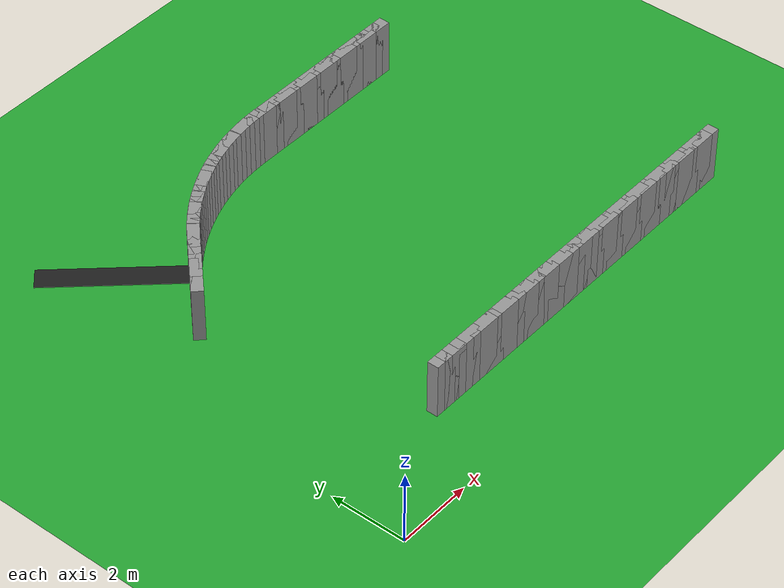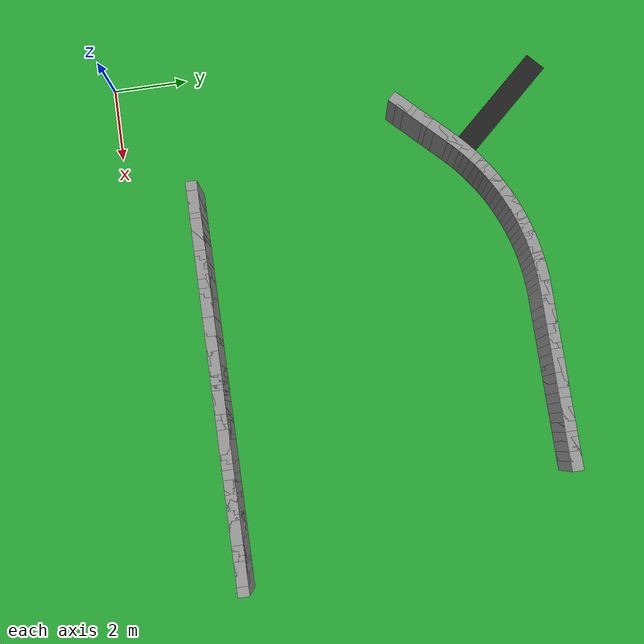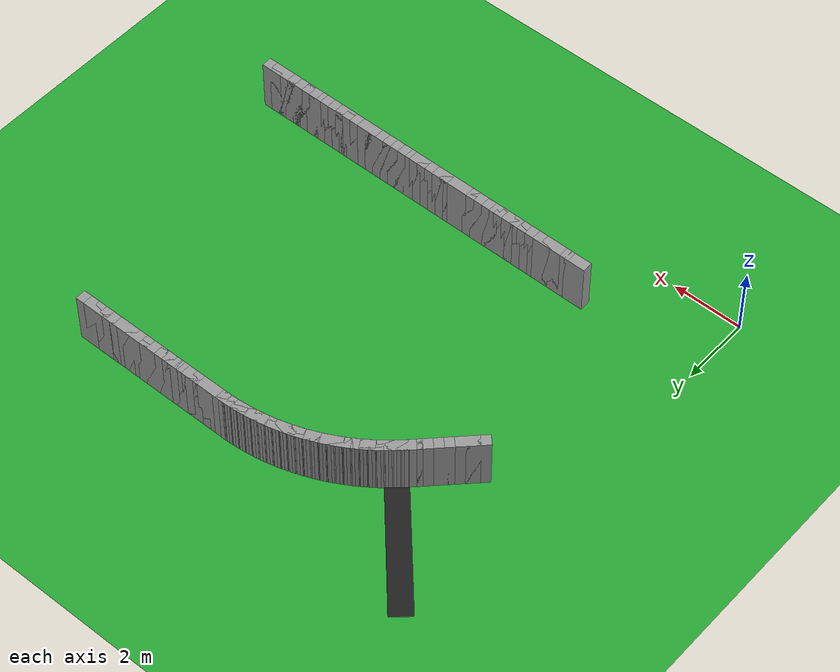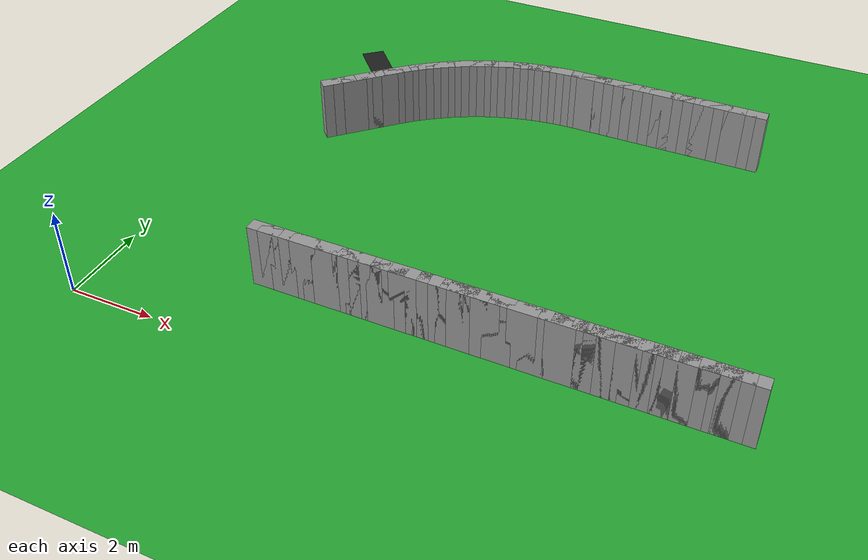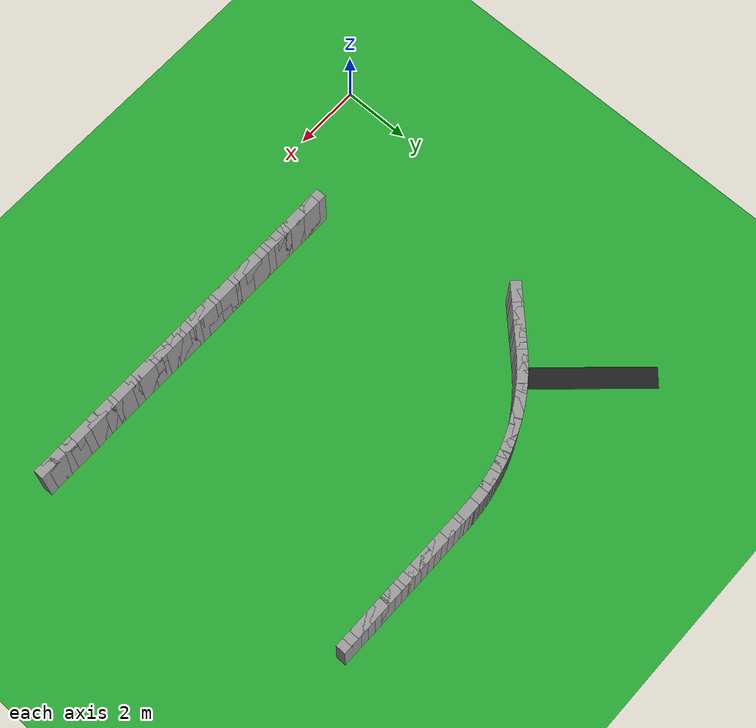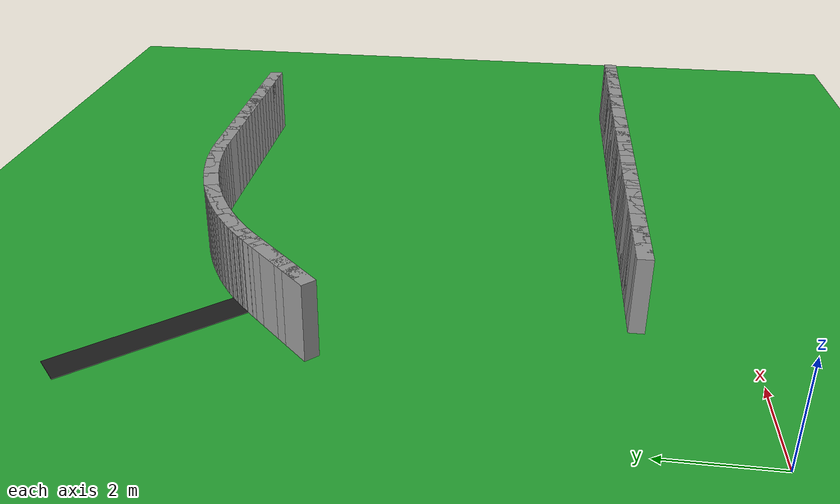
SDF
<sdf version="1.6">
 <world name="obstacle_tight">
  <include><uri>model://sun</uri></include>
  <model name="ground_plane">
   <static>true</static>
   <link name="link">
    <collision name="collision">
     <surface><friction><ode><mu>100</mu><mu2>50</mu2></ode></friction></surface>
     <geometry><plane><normal>0 0 1</normal><size>120 120</size></plane></geometry>
    </collision>
    <visual name="visual">
     <geometry><plane><normal>0 0 1</normal><size>120 120</size></plane></geometry>
     <material>
      <script><uri>file://media/materials/scripts/gazebo.material</uri><name>Gazebo/Green</name></script>
     </material>
    </visual>
   </link>
  </model>
  <model name="curbL_14">
   <static>true</static>
   <pose>3.625 1.950 0.750 0 0 0.00000</pose>
   <link name="link">
    <collision name="collision"><geometry><box><size>0.610 0.300 1.500</size></box></geometry></collision>
    <visual name="visual">
     <geometry><box><size>0.610 0.300 1.500</size></box></geometry>
     <material>
      <script><uri>file://media/materials/scripts/gazebo.material</uri><name>Gazebo/Grey</name></script>
     </material>
    </visual>
   </link>
  </model>
  <model name="curbL_15">
   <static>true</static>
   <pose>3.875 1.950 0.750 0 0 0.00000</pose>
   <link name="link">
    <collision name="collision"><geometry><box><size>0.610 0.300 1.500</size></box></geometry></collision>
    <visual name="visual">
     <geometry><box><size>0.610 0.300 1.500</size></box></geometry>
     <material>
      <script><uri>file://media/materials/scripts/gazebo.material</uri><name>Gazebo/Grey</name></script>
     </material>
    </visual>
   </link>
  </model>
  <model name="curbL_16">
   <static>true</static>
   <pose>4.125 1.950 0.750 0 0 0.00000</pose>
   <link name="link">
    <collision name="collision"><geometry><box><size>0.610 0.300 1.500</size></box></geometry></collision>
    <visual name="visual">
     <geometry><box><size>0.610 0.300 1.500</size></box></geometry>
     <material>
      <script><uri>file://media/materials/scripts/gazebo.material</uri><name>Gazebo/Grey</name></script>
     </material>
    </visual>
   </link>
  </model>
  <model name="curbL_17">
   <static>true</static>
   <pose>4.375 1.950 0.750 0 0 0.00000</pose>
   <link name="link">
    <collision name="collision"><geometry><box><size>0.610 0.300 1.500</size></box></geometry></collision>
    <visual name="visual">
     <geometry><box><size>0.610 0.300 1.500</size></box></geometry>
     <material>
      <script><uri>file://media/materials/scripts/gazebo.material</uri><name>Gazebo/Grey</name></script>
     </material>
    </visual>
   </link>
  </model>
  <model name="curbL_18">
   <static>true</static>
   <pose>4.625 1.950 0.750 0 0 0.00000</pose>
   <link name="link">
    <collision name="collision"><geometry><box><size>0.610 0.300 1.500</size></box></geometry></collision>
    <visual name="visual">
     <geometry><box><size>0.610 0.300 1.500</size></box></geometry>
     <material>
      <script><uri>file://media/materials/scripts/gazebo.material</uri><name>Gazebo/Grey</name></script>
     </material>
    </visual>
   </link>
  </model>
  <model name="curbL_19">
   <static>true</static>
   <pose>4.875 1.950 0.750 0 0 0.00000</pose>
   <link name="link">
    <collision name="collision"><geometry><box><size>0.610 0.300 1.500</size></box></geometry></collision>
    <visual name="visual">
     <geometry><box><size>0.610 0.300 1.500</size></box></geometry>
     <material>
      <script><uri>file://media/materials/scripts/gazebo.material</uri><name>Gazebo/Grey</name></script>
     </material>
    </visual>
   </link>
  </model>
  <model name="curbL_20">
   <static>true</static>
   <pose>5.125 1.950 0.750 0 0 0.00000</pose>
   <link name="link">
    <collision name="collision"><geometry><box><size>0.610 0.300 1.500</size></box></geometry></collision>
    <visual name="visual">
     <geometry><box><size>0.610 0.300 1.500</size></box></geometry>
     <material>
      <script><uri>file://media/materials/scripts/gazebo.material</uri><name>Gazebo/Grey</name></script>
     </material>
    </visual>
   </link>
  </model>
  <model name="curbL_21">
   <static>true</static>
   <pose>5.375 1.950 0.750 0 0 0.00000</pose>
   <link name="link">
    <collision name="collision"><geometry><box><size>0.610 0.300 1.500</size></box></geometry></collision>
    <visual name="visual">
     <geometry><box><size>0.610 0.300 1.500</size></box></geometry>
     <material>
      <script><uri>file://media/materials/scripts/gazebo.material</uri><name>Gazebo/Grey</name></script>
     </material>
    </visual>
   </link>
  </model>
  <model name="curbL_22">
   <static>true</static>
   <pose>5.625 1.950 0.750 0 0 0.00000</pose>
   <link name="link">
    <collision name="collision"><geometry><box><size>0.610 0.300 1.500</size></box></geometry></collision>
    <visual name="visual">
     <geometry><box><size>0.610 0.300 1.500</size></box></geometry>
     <material>
      <script><uri>file://media/materials/scripts/gazebo.material</uri><name>Gazebo/Grey</name></script>
     </material>
    </visual>
   </link>
  </model>
  <model name="curbL_23">
   <static>true</static>
   <pose>5.875 1.950 0.750 0 0 0.00000</pose>
   <link name="link">
    <collision name="collision"><geometry><box><size>0.610 0.300 1.500</size></box></geometry></collision>
    <visual name="visual">
     <geometry><box><size>0.610 0.300 1.500</size></box></geometry>
     <material>
      <script><uri>file://media/materials/scripts/gazebo.material</uri><name>Gazebo/Grey</name></script>
     </material>
    </visual>
   </link>
  </model>
  <model name="curbL_24">
   <static>true</static>
   <pose>6.125 1.950 0.750 0 0 0.00000</pose>
   <link name="link">
    <collision name="collision"><geometry><box><size>0.610 0.300 1.500</size></box></geometry></collision>
    <visual name="visual">
     <geometry><box><size>0.610 0.300 1.500</size></box></geometry>
     <material>
      <script><uri>file://media/materials/scripts/gazebo.material</uri><name>Gazebo/Grey</name></script>
     </material>
    </visual>
   </link>
  </model>
  <model name="curbL_25">
   <static>true</static>
   <pose>6.375 1.950 0.750 0 0 0.00000</pose>
   <link name="link">
    <collision name="collision"><geometry><box><size>0.610 0.300 1.500</size></box></geometry></collision>
    <visual name="visual">
     <geometry><box><size>0.610 0.300 1.500</size></box></geometry>
     <material>
      <script><uri>file://media/materials/scripts/gazebo.material</uri><name>Gazebo/Grey</name></script>
     </material>
    </visual>
   </link>
  </model>
  <model name="curbL_26">
   <static>true</static>
   <pose>6.625 1.950 0.750 0 0 0.00000</pose>
   <link name="link">
    <collision name="collision"><geometry><box><size>0.610 0.300 1.500</size></box></geometry></collision>
    <visual name="visual">
     <geometry><box><size>0.610 0.300 1.500</size></box></geometry>
     <material>
      <script><uri>file://media/materials/scripts/gazebo.material</uri><name>Gazebo/Grey</name></script>
     </material>
    </visual>
   </link>
  </model>
  <model name="curbL_27">
   <static>true</static>
   <pose>6.875 1.950 0.750 0 0 0.00000</pose>
   <link name="link">
    <collision name="collision"><geometry><box><size>0.610 0.300 1.500</size></box></geometry></collision>
    <visual name="visual">
     <geometry><box><size>0.610 0.300 1.500</size></box></geometry>
     <material>
      <script><uri>file://media/materials/scripts/gazebo.material</uri><name>Gazebo/Grey</name></script>
     </material>
    </visual>
   </link>
  </model>
  <model name="curbL_28">
   <static>true</static>
   <pose>7.125 1.950 0.750 0 0 0.00000</pose>
   <link name="link">
    <collision name="collision"><geometry><box><size>0.610 0.300 1.500</size></box></geometry></collision>
    <visual name="visual">
     <geometry><box><size>0.610 0.300 1.500</size></box></geometry>
     <material>
      <script><uri>file://media/materials/scripts/gazebo.material</uri><name>Gazebo/Grey</name></script>
     </material>
    </visual>
   </link>
  </model>
  <model name="curbL_29">
   <static>true</static>
   <pose>7.375 1.950 0.750 0 0 0.00000</pose>
   <link name="link">
    <collision name="collision"><geometry><box><size>0.610 0.300 1.500</size></box></geometry></collision>
    <visual name="visual">
     <geometry><box><size>0.610 0.300 1.500</size></box></geometry>
     <material>
      <script><uri>file://media/materials/scripts/gazebo.material</uri><name>Gazebo/Grey</name></script>
     </material>
    </visual>
   </link>
  </model>
  <model name="curbL_30">
   <static>true</static>
   <pose>7.625 1.950 0.750 0 0 0.00000</pose>
   <link name="link">
    <collision name="collision"><geometry><box><size>0.610 0.300 1.500</size></box></geometry></collision>
    <visual name="visual">
     <geometry><box><size>0.610 0.300 1.500</size></box></geometry>
     <material>
      <script><uri>file://media/materials/scripts/gazebo.material</uri><name>Gazebo/Grey</name></script>
     </material>
    </visual>
   </link>
  </model>
  <model name="curbL_31">
   <static>true</static>
   <pose>7.875 1.950 0.750 0 0 0.00000</pose>
   <link name="link">
    <collision name="collision"><geometry><box><size>0.610 0.300 1.500</size></box></geometry></collision>
    <visual name="visual">
     <geometry><box><size>0.610 0.300 1.500</size></box></geometry>
     <material>
      <script><uri>file://media/materials/scripts/gazebo.material</uri><name>Gazebo/Grey</name></script>
     </material>
    </visual>
   </link>
  </model>
  <model name="curbL_32">
   <static>true</static>
   <pose>8.125 1.950 0.750 0 0 0.00000</pose>
   <link name="link">
    <collision name="collision"><geometry><box><size>0.610 0.300 1.500</size></box></geometry></collision>
    <visual name="visual">
     <geometry><box><size>0.610 0.300 1.500</size></box></geometry>
     <material>
      <script><uri>file://media/materials/scripts/gazebo.material</uri><name>Gazebo/Grey</name></script>
     </material>
    </visual>
   </link>
  </model>
  <model name="curbL_33">
   <static>true</static>
   <pose>8.375 1.950 0.750 0 0 0.00000</pose>
   <link name="link">
    <collision name="collision"><geometry><box><size>0.610 0.300 1.500</size></box></geometry></collision>
    <visual name="visual">
     <geometry><box><size>0.610 0.300 1.500</size></box></geometry>
     <material>
      <script><uri>file://media/materials/scripts/gazebo.material</uri><name>Gazebo/Grey</name></script>
     </material>
    </visual>
   </link>
  </model>
  <model name="curbL_34">
   <static>true</static>
   <pose>8.625 1.950 0.750 0 0 0.00000</pose>
   <link name="link">
    <collision name="collision"><geometry><box><size>0.610 0.300 1.500</size></box></geometry></collision>
    <visual name="visual">
     <geometry><box><size>0.610 0.300 1.500</size></box></geometry>
     <material>
      <script><uri>file://media/materials/scripts/gazebo.material</uri><name>Gazebo/Grey</name></script>
     </material>
    </visual>
   </link>
  </model>
  <model name="curbL_35">
   <static>true</static>
   <pose>8.875 1.950 0.750 0 0 0.00000</pose>
   <link name="link">
    <collision name="collision"><geometry><box><size>0.610 0.300 1.500</size></box></geometry></collision>
    <visual name="visual">
     <geometry><box><size>0.610 0.300 1.500</size></box></geometry>
     <material>
      <script><uri>file://media/materials/scripts/gazebo.material</uri><name>Gazebo/Grey</name></script>
     </material>
    </visual>
   </link>
  </model>
  <model name="curbL_36">
   <static>true</static>
   <pose>9.125 1.950 0.750 0 0 0.00000</pose>
   <link name="link">
    <collision name="collision"><geometry><box><size>0.610 0.300 1.500</size></box></geometry></collision>
    <visual name="visual">
     <geometry><box><size>0.610 0.300 1.500</size></box></geometry>
     <material>
      <script><uri>file://media/materials/scripts/gazebo.material</uri><name>Gazebo/Grey</name></script>
     </material>
    </visual>
   </link>
  </model>
  <model name="curbL_37">
   <static>true</static>
   <pose>9.375 1.950 0.750 0 0 0.00000</pose>
   <link name="link">
    <collision name="collision"><geometry><box><size>0.610 0.300 1.500</size></box></geometry></collision>
    <visual name="visual">
     <geometry><box><size>0.610 0.300 1.500</size></box></geometry>
     <material>
      <script><uri>file://media/materials/scripts/gazebo.material</uri><name>Gazebo/Grey</name></script>
     </material>
    </visual>
   </link>
  </model>
  <model name="curbL_38">
   <static>true</static>
   <pose>9.625 1.950 0.750 0 0 0.00000</pose>
   <link name="link">
    <collision name="collision"><geometry><box><size>0.610 0.300 1.500</size></box></geometry></collision>
    <visual name="visual">
     <geometry><box><size>0.610 0.300 1.500</size></box></geometry>
     <material>
      <script><uri>file://media/materials/scripts/gazebo.material</uri><name>Gazebo/Grey</name></script>
     </material>
    </visual>
   </link>
  </model>
  <model name="curbL_39">
   <static>true</static>
   <pose>9.875 1.950 0.750 0 0 0.00000</pose>
   <link name="link">
    <collision name="collision"><geometry><box><size>0.610 0.300 1.500</size></box></geometry></collision>
    <visual name="visual">
     <geometry><box><size>0.610 0.300 1.500</size></box></geometry>
     <material>
      <script><uri>file://media/materials/scripts/gazebo.material</uri><name>Gazebo/Grey</name></script>
     </material>
    </visual>
   </link>
  </model>
  <model name="curbL_40">
   <static>true</static>
   <pose>10.125 1.950 0.750 0 0 0.00000</pose>
   <link name="link">
    <collision name="collision"><geometry><box><size>0.610 0.300 1.500</size></box></geometry></collision>
    <visual name="visual">
     <geometry><box><size>0.610 0.300 1.500</size></box></geometry>
     <material>
      <script><uri>file://media/materials/scripts/gazebo.material</uri><name>Gazebo/Grey</name></script>
     </material>
    </visual>
   </link>
  </model>
  <model name="curbL_41">
   <static>true</static>
   <pose>10.375 1.950 0.750 0 0 0.00000</pose>
   <link name="link">
    <collision name="collision"><geometry><box><size>0.610 0.300 1.500</size></box></geometry></collision>
    <visual name="visual">
     <geometry><box><size>0.610 0.300 1.500</size></box></geometry>
     <material>
      <script><uri>file://media/materials/scripts/gazebo.material</uri><name>Gazebo/Grey</name></script>
     </material>
    </visual>
   </link>
  </model>
  <model name="curbL_42">
   <static>true</static>
   <pose>10.625 1.950 0.750 0 0 0.00000</pose>
   <link name="link">
    <collision name="collision"><geometry><box><size>0.610 0.300 1.500</size></box></geometry></collision>
    <visual name="visual">
     <geometry><box><size>0.610 0.300 1.500</size></box></geometry>
     <material>
      <script><uri>file://media/materials/scripts/gazebo.material</uri><name>Gazebo/Grey</name></script>
     </material>
    </visual>
   </link>
  </model>
  <model name="curbL_43">
   <static>true</static>
   <pose>10.875 1.950 0.750 0 0 0.00000</pose>
   <link name="link">
    <collision name="collision"><geometry><box><size>0.610 0.300 1.500</size></box></geometry></collision>
    <visual name="visual">
     <geometry><box><size>0.610 0.300 1.500</size></box></geometry>
     <material>
      <script><uri>file://media/materials/scripts/gazebo.material</uri><name>Gazebo/Grey</name></script>
     </material>
    </visual>
   </link>
  </model>
  <model name="curbL_44">
   <static>true</static>
   <pose>11.125 1.950 0.750 0 0 0.00000</pose>
   <link name="link">
    <collision name="collision"><geometry><box><size>0.610 0.300 1.500</size></box></geometry></collision>
    <visual name="visual">
     <geometry><box><size>0.610 0.300 1.500</size></box></geometry>
     <material>
      <script><uri>file://media/materials/scripts/gazebo.material</uri><name>Gazebo/Grey</name></script>
     </material>
    </visual>
   </link>
  </model>
  <model name="curbL_45">
   <static>true</static>
   <pose>11.375 1.950 0.750 0 0 0.00000</pose>
   <link name="link">
    <collision name="collision"><geometry><box><size>0.610 0.300 1.500</size></box></geometry></collision>
    <visual name="visual">
     <geometry><box><size>0.610 0.300 1.500</size></box></geometry>
     <material>
      <script><uri>file://media/materials/scripts/gazebo.material</uri><name>Gazebo/Grey</name></script>
     </material>
    </visual>
   </link>
  </model>
  <model name="curbL_46">
   <static>true</static>
   <pose>11.625 1.950 0.750 0 0 0.00000</pose>
   <link name="link">
    <collision name="collision"><geometry><box><size>0.610 0.300 1.500</size></box></geometry></collision>
    <visual name="visual">
     <geometry><box><size>0.610 0.300 1.500</size></box></geometry>
     <material>
      <script><uri>file://media/materials/scripts/gazebo.material</uri><name>Gazebo/Grey</name></script>
     </material>
    </visual>
   </link>
  </model>
  <model name="curbL_47">
   <static>true</static>
   <pose>11.875 1.950 0.750 0 0 0.00000</pose>
   <link name="link">
    <collision name="collision"><geometry><box><size>0.610 0.300 1.500</size></box></geometry></collision>
    <visual name="visual">
     <geometry><box><size>0.610 0.300 1.500</size></box></geometry>
     <material>
      <script><uri>file://media/materials/scripts/gazebo.material</uri><name>Gazebo/Grey</name></script>
     </material>
    </visual>
   </link>
  </model>
  <model name="curbL_48">
   <static>true</static>
   <pose>12.125 1.950 0.750 0 0 0.00000</pose>
   <link name="link">
    <collision name="collision"><geometry><box><size>0.610 0.300 1.500</size></box></geometry></collision>
    <visual name="visual">
     <geometry><box><size>0.610 0.300 1.500</size></box></geometry>
     <material>
      <script><uri>file://media/materials/scripts/gazebo.material</uri><name>Gazebo/Grey</name></script>
     </material>
    </visual>
   </link>
  </model>
  <model name="curbL_49">
   <static>true</static>
   <pose>12.375 1.950 0.750 0 0 0.00000</pose>
   <link name="link">
    <collision name="collision"><geometry><box><size>0.610 0.300 1.500</size></box></geometry></collision>
    <visual name="visual">
     <geometry><box><size>0.610 0.300 1.500</size></box></geometry>
     <material>
      <script><uri>file://media/materials/scripts/gazebo.material</uri><name>Gazebo/Grey</name></script>
     </material>
    </visual>
   </link>
  </model>
  <model name="curbL_50">
   <static>true</static>
   <pose>12.625 1.950 0.750 0 0 0.00000</pose>
   <link name="link">
    <collision name="collision"><geometry><box><size>0.610 0.300 1.500</size></box></geometry></collision>
    <visual name="visual">
     <geometry><box><size>0.610 0.300 1.500</size></box></geometry>
     <material>
      <script><uri>file://media/materials/scripts/gazebo.material</uri><name>Gazebo/Grey</name></script>
     </material>
    </visual>
   </link>
  </model>
  <model name="curbL_51">
   <static>true</static>
   <pose>12.875 1.950 0.750 0 0 0.00000</pose>
   <link name="link">
    <collision name="collision"><geometry><box><size>0.610 0.300 1.500</size></box></geometry></collision>
    <visual name="visual">
     <geometry><box><size>0.610 0.300 1.500</size></box></geometry>
     <material>
      <script><uri>file://media/materials/scripts/gazebo.material</uri><name>Gazebo/Grey</name></script>
     </material>
    </visual>
   </link>
  </model>
  <model name="curbL_52">
   <static>true</static>
   <pose>13.125 1.950 0.750 0 0 0.00000</pose>
   <link name="link">
    <collision name="collision"><geometry><box><size>0.610 0.300 1.500</size></box></geometry></collision>
    <visual name="visual">
     <geometry><box><size>0.610 0.300 1.500</size></box></geometry>
     <material>
      <script><uri>file://media/materials/scripts/gazebo.material</uri><name>Gazebo/Grey</name></script>
     </material>
    </visual>
   </link>
  </model>
  <model name="curbL_53">
   <static>true</static>
   <pose>13.375 1.950 0.750 0 0 0.00000</pose>
   <link name="link">
    <collision name="collision"><geometry><box><size>0.610 0.300 1.500</size></box></geometry></collision>
    <visual name="visual">
     <geometry><box><size>0.610 0.300 1.500</size></box></geometry>
     <material>
      <script><uri>file://media/materials/scripts/gazebo.material</uri><name>Gazebo/Grey</name></script>
     </material>
    </visual>
   </link>
  </model>
  <model name="curbL_54">
   <static>true</static>
   <pose>13.625 1.950 0.750 0 0 0.00000</pose>
   <link name="link">
    <collision name="collision"><geometry><box><size>0.610 0.300 1.500</size></box></geometry></collision>
    <visual name="visual">
     <geometry><box><size>0.610 0.300 1.500</size></box></geometry>
     <material>
      <script><uri>file://media/materials/scripts/gazebo.material</uri><name>Gazebo/Grey</name></script>
     </material>
    </visual>
   </link>
  </model>
  <model name="curbL_224">
   <static>true</static>
   <pose>11.799 10.612 0.750 0 0 3.14159</pose>
   <link name="link">
    <collision name="collision"><geometry><box><size>0.610 0.300 1.500</size></box></geometry></collision>
    <visual name="visual">
     <geometry><box><size>0.610 0.300 1.500</size></box></geometry>
     <material>
      <script><uri>file://media/materials/scripts/gazebo.material</uri><name>Gazebo/Grey</name></script>
     </material>
    </visual>
   </link>
  </model>
  <model name="curbL_225">
   <static>true</static>
   <pose>11.549 10.612 0.750 0 0 3.14159</pose>
   <link name="link">
    <collision name="collision"><geometry><box><size>0.610 0.300 1.500</size></box></geometry></collision>
    <visual name="visual">
     <geometry><box><size>0.610 0.300 1.500</size></box></geometry>
     <material>
      <script><uri>file://media/materials/scripts/gazebo.material</uri><name>Gazebo/Grey</name></script>
     </material>
    </visual>
   </link>
  </model>
  <model name="curbL_226">
   <static>true</static>
   <pose>11.299 10.612 0.750 0 0 3.14159</pose>
   <link name="link">
    <collision name="collision"><geometry><box><size>0.610 0.300 1.500</size></box></geometry></collision>
    <visual name="visual">
     <geometry><box><size>0.610 0.300 1.500</size></box></geometry>
     <material>
      <script><uri>file://media/materials/scripts/gazebo.material</uri><name>Gazebo/Grey</name></script>
     </material>
    </visual>
   </link>
  </model>
  <model name="curbL_227">
   <static>true</static>
   <pose>11.049 10.612 0.750 0 0 3.14159</pose>
   <link name="link">
    <collision name="collision"><geometry><box><size>0.610 0.300 1.500</size></box></geometry></collision>
    <visual name="visual">
     <geometry><box><size>0.610 0.300 1.500</size></box></geometry>
     <material>
      <script><uri>file://media/materials/scripts/gazebo.material</uri><name>Gazebo/Grey</name></script>
     </material>
    </visual>
   </link>
  </model>
  <model name="curbL_228">
   <static>true</static>
   <pose>10.799 10.612 0.750 0 0 3.14159</pose>
   <link name="link">
    <collision name="collision"><geometry><box><size>0.610 0.300 1.500</size></box></geometry></collision>
    <visual name="visual">
     <geometry><box><size>0.610 0.300 1.500</size></box></geometry>
     <material>
      <script><uri>file://media/materials/scripts/gazebo.material</uri><name>Gazebo/Grey</name></script>
     </material>
    </visual>
   </link>
  </model>
  <model name="curbL_229">
   <static>true</static>
   <pose>10.549 10.612 0.750 0 0 3.14159</pose>
   <link name="link">
    <collision name="collision"><geometry><box><size>0.610 0.300 1.500</size></box></geometry></collision>
    <visual name="visual">
     <geometry><box><size>0.610 0.300 1.500</size></box></geometry>
     <material>
      <script><uri>file://media/materials/scripts/gazebo.material</uri><name>Gazebo/Grey</name></script>
     </material>
    </visual>
   </link>
  </model>
  <model name="curbL_230">
   <static>true</static>
   <pose>10.299 10.612 0.750 0 0 3.14159</pose>
   <link name="link">
    <collision name="collision"><geometry><box><size>0.610 0.300 1.500</size></box></geometry></collision>
    <visual name="visual">
     <geometry><box><size>0.610 0.300 1.500</size></box></geometry>
     <material>
      <script><uri>file://media/materials/scripts/gazebo.material</uri><name>Gazebo/Grey</name></script>
     </material>
    </visual>
   </link>
  </model>
  <model name="curbL_231">
   <static>true</static>
   <pose>10.049 10.612 0.750 0 0 3.14159</pose>
   <link name="link">
    <collision name="collision"><geometry><box><size>0.610 0.300 1.500</size></box></geometry></collision>
    <visual name="visual">
     <geometry><box><size>0.610 0.300 1.500</size></box></geometry>
     <material>
      <script><uri>file://media/materials/scripts/gazebo.material</uri><name>Gazebo/Grey</name></script>
     </material>
    </visual>
   </link>
  </model>
  <model name="curbL_232">
   <static>true</static>
   <pose>9.799 10.612 0.750 0 0 3.14159</pose>
   <link name="link">
    <collision name="collision"><geometry><box><size>0.610 0.300 1.500</size></box></geometry></collision>
    <visual name="visual">
     <geometry><box><size>0.610 0.300 1.500</size></box></geometry>
     <material>
      <script><uri>file://media/materials/scripts/gazebo.material</uri><name>Gazebo/Grey</name></script>
     </material>
    </visual>
   </link>
  </model>
  <model name="curbL_233">
   <static>true</static>
   <pose>9.549 10.612 0.750 0 0 3.14159</pose>
   <link name="link">
    <collision name="collision"><geometry><box><size>0.610 0.300 1.500</size></box></geometry></collision>
    <visual name="visual">
     <geometry><box><size>0.610 0.300 1.500</size></box></geometry>
     <material>
      <script><uri>file://media/materials/scripts/gazebo.material</uri><name>Gazebo/Grey</name></script>
     </material>
    </visual>
   </link>
  </model>
  <model name="curbL_234">
   <static>true</static>
   <pose>9.299 10.612 0.750 0 0 3.14159</pose>
   <link name="link">
    <collision name="collision"><geometry><box><size>0.610 0.300 1.500</size></box></geometry></collision>
    <visual name="visual">
     <geometry><box><size>0.610 0.300 1.500</size></box></geometry>
     <material>
      <script><uri>file://media/materials/scripts/gazebo.material</uri><name>Gazebo/Grey</name></script>
     </material>
    </visual>
   </link>
  </model>
  <model name="curbL_235">
   <static>true</static>
   <pose>9.049 10.612 0.750 0 0 3.14159</pose>
   <link name="link">
    <collision name="collision"><geometry><box><size>0.610 0.300 1.500</size></box></geometry></collision>
    <visual name="visual">
     <geometry><box><size>0.610 0.300 1.500</size></box></geometry>
     <material>
      <script><uri>file://media/materials/scripts/gazebo.material</uri><name>Gazebo/Grey</name></script>
     </material>
    </visual>
   </link>
  </model>
  <model name="curbL_236">
   <static>true</static>
   <pose>8.799 10.612 0.750 0 0 3.14159</pose>
   <link name="link">
    <collision name="collision"><geometry><box><size>0.610 0.300 1.500</size></box></geometry></collision>
    <visual name="visual">
     <geometry><box><size>0.610 0.300 1.500</size></box></geometry>
     <material>
      <script><uri>file://media/materials/scripts/gazebo.material</uri><name>Gazebo/Grey</name></script>
     </material>
    </visual>
   </link>
  </model>
  <model name="curbL_237">
   <static>true</static>
   <pose>8.549 10.612 0.750 0 0 3.14159</pose>
   <link name="link">
    <collision name="collision"><geometry><box><size>0.610 0.300 1.500</size></box></geometry></collision>
    <visual name="visual">
     <geometry><box><size>0.610 0.300 1.500</size></box></geometry>
     <material>
      <script><uri>file://media/materials/scripts/gazebo.material</uri><name>Gazebo/Grey</name></script>
     </material>
    </visual>
   </link>
  </model>
  <model name="curbL_238">
   <static>true</static>
   <pose>8.299 10.612 0.750 0 0 3.14159</pose>
   <link name="link">
    <collision name="collision"><geometry><box><size>0.610 0.300 1.500</size></box></geometry></collision>
    <visual name="visual">
     <geometry><box><size>0.610 0.300 1.500</size></box></geometry>
     <material>
      <script><uri>file://media/materials/scripts/gazebo.material</uri><name>Gazebo/Grey</name></script>
     </material>
    </visual>
   </link>
  </model>
  <model name="curbL_239">
   <static>true</static>
   <pose>8.049 10.612 0.750 0 0 3.14159</pose>
   <link name="link">
    <collision name="collision"><geometry><box><size>0.610 0.300 1.500</size></box></geometry></collision>
    <visual name="visual">
     <geometry><box><size>0.610 0.300 1.500</size></box></geometry>
     <material>
      <script><uri>file://media/materials/scripts/gazebo.material</uri><name>Gazebo/Grey</name></script>
     </material>
    </visual>
   </link>
  </model>
  <model name="curbL_240">
   <static>true</static>
   <pose>7.799 10.612 0.750 0 0 3.14159</pose>
   <link name="link">
    <collision name="collision"><geometry><box><size>0.610 0.300 1.500</size></box></geometry></collision>
    <visual name="visual">
     <geometry><box><size>0.610 0.300 1.500</size></box></geometry>
     <material>
      <script><uri>file://media/materials/scripts/gazebo.material</uri><name>Gazebo/Grey</name></script>
     </material>
    </visual>
   </link>
  </model>
  <model name="curbL_241">
   <static>true</static>
   <pose>7.549 10.612 0.750 0 0 3.14159</pose>
   <link name="link">
    <collision name="collision"><geometry><box><size>0.610 0.300 1.500</size></box></geometry></collision>
    <visual name="visual">
     <geometry><box><size>0.610 0.300 1.500</size></box></geometry>
     <material>
      <script><uri>file://media/materials/scripts/gazebo.material</uri><name>Gazebo/Grey</name></script>
     </material>
    </visual>
   </link>
  </model>
  <model name="curbL_242">
   <static>true</static>
   <pose>7.329 10.611 0.750 0 0 -3.12588</pose>
   <link name="link">
    <collision name="collision"><geometry><box><size>0.550 0.300 1.500</size></box></geometry></collision>
    <visual name="visual">
     <geometry><box><size>0.550 0.300 1.500</size></box></geometry>
     <material>
      <script><uri>file://media/materials/scripts/gazebo.material</uri><name>Gazebo/Grey</name></script>
     </material>
    </visual>
   </link>
  </model>
  <model name="curbL_243">
   <static>true</static>
   <pose>7.139 10.605 0.750 0 0 -3.09447</pose>
   <link name="link">
    <collision name="collision"><geometry><box><size>0.550 0.300 1.500</size></box></geometry></collision>
    <visual name="visual">
     <geometry><box><size>0.550 0.300 1.500</size></box></geometry>
     <material>
      <script><uri>file://media/materials/scripts/gazebo.material</uri><name>Gazebo/Grey</name></script>
     </material>
    </visual>
   </link>
  </model>
  <model name="curbL_244">
   <static>true</static>
   <pose>6.950 10.593 0.750 0 0 -3.06305</pose>
   <link name="link">
    <collision name="collision"><geometry><box><size>0.550 0.300 1.500</size></box></geometry></collision>
    <visual name="visual">
     <geometry><box><size>0.550 0.300 1.500</size></box></geometry>
     <material>
      <script><uri>file://media/materials/scripts/gazebo.material</uri><name>Gazebo/Grey</name></script>
     </material>
    </visual>
   </link>
  </model>
  <model name="curbL_245">
   <static>true</static>
   <pose>6.760 10.575 0.750 0 0 -3.03164</pose>
   <link name="link">
    <collision name="collision"><geometry><box><size>0.550 0.300 1.500</size></box></geometry></collision>
    <visual name="visual">
     <geometry><box><size>0.550 0.300 1.500</size></box></geometry>
     <material>
      <script><uri>file://media/materials/scripts/gazebo.material</uri><name>Gazebo/Grey</name></script>
     </material>
    </visual>
   </link>
  </model>
  <model name="curbL_246">
   <static>true</static>
   <pose>6.572 10.551 0.750 0 0 -3.00022</pose>
   <link name="link">
    <collision name="collision"><geometry><box><size>0.550 0.300 1.500</size></box></geometry></collision>
    <visual name="visual">
     <geometry><box><size>0.550 0.300 1.500</size></box></geometry>
     <material>
      <script><uri>file://media/materials/scripts/gazebo.material</uri><name>Gazebo/Grey</name></script>
     </material>
    </visual>
   </link>
  </model>
  <model name="curbL_247">
   <static>true</static>
   <pose>6.384 10.521 0.750 0 0 -2.96881</pose>
   <link name="link">
    <collision name="collision"><geometry><box><size>0.550 0.300 1.500</size></box></geometry></collision>
    <visual name="visual">
     <geometry><box><size>0.550 0.300 1.500</size></box></geometry>
     <material>
      <script><uri>file://media/materials/scripts/gazebo.material</uri><name>Gazebo/Grey</name></script>
     </material>
    </visual>
   </link>
  </model>
  <model name="curbL_248">
   <static>true</static>
   <pose>6.198 10.486 0.750 0 0 -2.93739</pose>
   <link name="link">
    <collision name="collision"><geometry><box><size>0.550 0.300 1.500</size></box></geometry></collision>
    <visual name="visual">
     <geometry><box><size>0.550 0.300 1.500</size></box></geometry>
     <material>
      <script><uri>file://media/materials/scripts/gazebo.material</uri><name>Gazebo/Grey</name></script>
     </material>
    </visual>
   </link>
  </model>
  <model name="curbL_249">
   <static>true</static>
   <pose>6.012 10.444 0.750 0 0 -2.90597</pose>
   <link name="link">
    <collision name="collision"><geometry><box><size>0.550 0.300 1.500</size></box></geometry></collision>
    <visual name="visual">
     <geometry><box><size>0.550 0.300 1.500</size></box></geometry>
     <material>
      <script><uri>file://media/materials/scripts/gazebo.material</uri><name>Gazebo/Grey</name></script>
     </material>
    </visual>
   </link>
  </model>
  <model name="curbL_250">
   <static>true</static>
   <pose>5.828 10.397 0.750 0 0 -2.87456</pose>
   <link name="link">
    <collision name="collision"><geometry><box><size>0.550 0.300 1.500</size></box></geometry></collision>
    <visual name="visual">
     <geometry><box><size>0.550 0.300 1.500</size></box></geometry>
     <material>
      <script><uri>file://media/materials/scripts/gazebo.material</uri><name>Gazebo/Grey</name></script>
     </material>
    </visual>
   </link>
  </model>
  <model name="curbL_251">
   <static>true</static>
   <pose>5.646 10.344 0.750 0 0 -2.84314</pose>
   <link name="link">
    <collision name="collision"><geometry><box><size>0.550 0.300 1.500</size></box></geometry></collision>
    <visual name="visual">
     <geometry><box><size>0.550 0.300 1.500</size></box></geometry>
     <material>
      <script><uri>file://media/materials/scripts/gazebo.material</uri><name>Gazebo/Grey</name></script>
     </material>
    </visual>
   </link>
  </model>
  <model name="curbL_252">
   <static>true</static>
   <pose>5.465 10.285 0.750 0 0 -2.81173</pose>
   <link name="link">
    <collision name="collision"><geometry><box><size>0.550 0.300 1.500</size></box></geometry></collision>
    <visual name="visual">
     <geometry><box><size>0.550 0.300 1.500</size></box></geometry>
     <material>
      <script><uri>file://media/materials/scripts/gazebo.material</uri><name>Gazebo/Grey</name></script>
     </material>
    </visual>
   </link>
  </model>
  <model name="curbL_253">
   <static>true</static>
   <pose>5.286 10.221 0.750 0 0 -2.78031</pose>
   <link name="link">
    <collision name="collision"><geometry><box><size>0.550 0.300 1.500</size></box></geometry></collision>
    <visual name="visual">
     <geometry><box><size>0.550 0.300 1.500</size></box></geometry>
     <material>
      <script><uri>file://media/materials/scripts/gazebo.material</uri><name>Gazebo/Grey</name></script>
     </material>
    </visual>
   </link>
  </model>
  <model name="curbL_254">
   <static>true</static>
   <pose>5.109 10.151 0.750 0 0 -2.74889</pose>
   <link name="link">
    <collision name="collision"><geometry><box><size>0.550 0.300 1.500</size></box></geometry></collision>
    <visual name="visual">
     <geometry><box><size>0.550 0.300 1.500</size></box></geometry>
     <material>
      <script><uri>file://media/materials/scripts/gazebo.material</uri><name>Gazebo/Grey</name></script>
     </material>
    </visual>
   </link>
  </model>
  <model name="curbL_255">
   <static>true</static>
   <pose>4.935 10.075 0.750 0 0 -2.71748</pose>
   <link name="link">
    <collision name="collision"><geometry><box><size>0.550 0.300 1.500</size></box></geometry></collision>
    <visual name="visual">
     <geometry><box><size>0.550 0.300 1.500</size></box></geometry>
     <material>
      <script><uri>file://media/materials/scripts/gazebo.material</uri><name>Gazebo/Grey</name></script>
     </material>
    </visual>
   </link>
  </model>
  <model name="curbL_256">
   <static>true</static>
   <pose>4.763 9.994 0.750 0 0 -2.68606</pose>
   <link name="link">
    <collision name="collision"><geometry><box><size>0.550 0.300 1.500</size></box></geometry></collision>
    <visual name="visual">
     <geometry><box><size>0.550 0.300 1.500</size></box></geometry>
     <material>
      <script><uri>file://media/materials/scripts/gazebo.material</uri><name>Gazebo/Grey</name></script>
     </material>
    </visual>
   </link>
  </model>
  <model name="curbL_257">
   <static>true</static>
   <pose>4.594 9.908 0.750 0 0 -2.65465</pose>
   <link name="link">
    <collision name="collision"><geometry><box><size>0.550 0.300 1.500</size></box></geometry></collision>
    <visual name="visual">
     <geometry><box><size>0.550 0.300 1.500</size></box></geometry>
     <material>
      <script><uri>file://media/materials/scripts/gazebo.material</uri><name>Gazebo/Grey</name></script>
     </material>
    </visual>
   </link>
  </model>
  <model name="curbL_258">
   <static>true</static>
   <pose>4.427 9.817 0.750 0 0 -2.62323</pose>
   <link name="link">
    <collision name="collision"><geometry><box><size>0.550 0.300 1.500</size></box></geometry></collision>
    <visual name="visual">
     <geometry><box><size>0.550 0.300 1.500</size></box></geometry>
     <material>
      <script><uri>file://media/materials/scripts/gazebo.material</uri><name>Gazebo/Grey</name></script>
     </material>
    </visual>
   </link>
  </model>
  <model name="curbL_259">
   <static>true</static>
   <pose>4.263 9.720 0.750 0 0 -2.59181</pose>
   <link name="link">
    <collision name="collision"><geometry><box><size>0.550 0.300 1.500</size></box></geometry></collision>
    <visual name="visual">
     <geometry><box><size>0.550 0.300 1.500</size></box></geometry>
     <material>
      <script><uri>file://media/materials/scripts/gazebo.material</uri><name>Gazebo/Grey</name></script>
     </material>
    </visual>
   </link>
  </model>
  <model name="curbL_260">
   <static>true</static>
   <pose>4.103 9.618 0.750 0 0 -2.56040</pose>
   <link name="link">
    <collision name="collision"><geometry><box><size>0.550 0.300 1.500</size></box></geometry></collision>
    <visual name="visual">
     <geometry><box><size>0.550 0.300 1.500</size></box></geometry>
     <material>
      <script><uri>file://media/materials/scripts/gazebo.material</uri><name>Gazebo/Grey</name></script>
     </material>
    </visual>
   </link>
  </model>
  <model name="curbL_261">
   <static>true</static>
   <pose>3.946 9.511 0.750 0 0 -2.52898</pose>
   <link name="link">
    <collision name="collision"><geometry><box><size>0.550 0.300 1.500</size></box></geometry></collision>
    <visual name="visual">
     <geometry><box><size>0.550 0.300 1.500</size></box></geometry>
     <material>
      <script><uri>file://media/materials/scripts/gazebo.material</uri><name>Gazebo/Grey</name></script>
     </material>
    </visual>
   </link>
  </model>
  <model name="curbL_262">
   <static>true</static>
   <pose>3.792 9.399 0.750 0 0 -2.49757</pose>
   <link name="link">
    <collision name="collision"><geometry><box><size>0.550 0.300 1.500</size></box></geometry></collision>
    <visual name="visual">
     <geometry><box><size>0.550 0.300 1.500</size></box></geometry>
     <material>
      <script><uri>file://media/materials/scripts/gazebo.material</uri><name>Gazebo/Grey</name></script>
     </material>
    </visual>
   </link>
  </model>
  <model name="curbL_263">
   <static>true</static>
   <pose>3.642 9.283 0.750 0 0 -2.46615</pose>
   <link name="link">
    <collision name="collision"><geometry><box><size>0.550 0.300 1.500</size></box></geometry></collision>
    <visual name="visual">
     <geometry><box><size>0.550 0.300 1.500</size></box></geometry>
     <material>
      <script><uri>file://media/materials/scripts/gazebo.material</uri><name>Gazebo/Grey</name></script>
     </material>
    </visual>
   </link>
  </model>
  <model name="curbL_264">
   <static>true</static>
   <pose>3.495 9.162 0.750 0 0 -2.43473</pose>
   <link name="link">
    <collision name="collision"><geometry><box><size>0.550 0.300 1.500</size></box></geometry></collision>
    <visual name="visual">
     <geometry><box><size>0.550 0.300 1.500</size></box></geometry>
     <material>
      <script><uri>file://media/materials/scripts/gazebo.material</uri><name>Gazebo/Grey</name></script>
     </material>
    </visual>
   </link>
  </model>
  <model name="asphalt_265">
   <static>true</static>
   <pose>2.041 10.478 0.005 0 0 -2.40332</pose>
   <link name="link">
    <visual name="visual">
     <geometry><box><size>0.611 3.600 0.010</size></box></geometry>
     <material>
      <script><uri>file://media/materials/scripts/gazebo.material</uri><name>Gazebo/Black</name></script>
     </material>
    </visual>
   </link>
  </model>
  <model name="curbL_265">
   <static>true</static>
   <pose>3.353 9.036 0.750 0 0 -2.40332</pose>
   <link name="link">
    <collision name="collision"><geometry><box><size>0.550 0.300 1.500</size></box></geometry></collision>
    <visual name="visual">
     <geometry><box><size>0.550 0.300 1.500</size></box></geometry>
     <material>
      <script><uri>file://media/materials/scripts/gazebo.material</uri><name>Gazebo/Grey</name></script>
     </material>
    </visual>
   </link>
  </model>
  <model name="curbL_266">
   <static>true</static>
   <pose>3.214 8.906 0.750 0 0 -2.37190</pose>
   <link name="link">
    <collision name="collision"><geometry><box><size>0.550 0.300 1.500</size></box></geometry></collision>
    <visual name="visual">
     <geometry><box><size>0.550 0.300 1.500</size></box></geometry>
     <material>
      <script><uri>file://media/materials/scripts/gazebo.material</uri><name>Gazebo/Grey</name></script>
     </material>
    </visual>
   </link>
  </model>
  <model name="curbL_267">
   <static>true</static>
   <pose>3.058 8.752 0.750 0 0 -2.35619</pose>
   <link name="link">
    <collision name="collision"><geometry><box><size>0.610 0.300 1.500</size></box></geometry></collision>
    <visual name="visual">
     <geometry><box><size>0.610 0.300 1.500</size></box></geometry>
     <material>
      <script><uri>file://media/materials/scripts/gazebo.material</uri><name>Gazebo/Grey</name></script>
     </material>
    </visual>
   </link>
  </model>
  <model name="curbL_268">
   <static>true</static>
   <pose>2.881 8.575 0.750 0 0 -2.35619</pose>
   <link name="link">
    <collision name="collision"><geometry><box><size>0.610 0.300 1.500</size></box></geometry></collision>
    <visual name="visual">
     <geometry><box><size>0.610 0.300 1.500</size></box></geometry>
     <material>
      <script><uri>file://media/materials/scripts/gazebo.material</uri><name>Gazebo/Grey</name></script>
     </material>
    </visual>
   </link>
  </model>
  <model name="curbL_269">
   <static>true</static>
   <pose>2.704 8.398 0.750 0 0 -2.35619</pose>
   <link name="link">
    <collision name="collision"><geometry><box><size>0.610 0.300 1.500</size></box></geometry></collision>
    <visual name="visual">
     <geometry><box><size>0.610 0.300 1.500</size></box></geometry>
     <material>
      <script><uri>file://media/materials/scripts/gazebo.material</uri><name>Gazebo/Grey</name></script>
     </material>
    </visual>
   </link>
  </model>
  <model name="curbL_270">
   <static>true</static>
   <pose>2.527 8.221 0.750 0 0 -2.35619</pose>
   <link name="link">
    <collision name="collision"><geometry><box><size>0.610 0.300 1.500</size></box></geometry></collision>
    <visual name="visual">
     <geometry><box><size>0.610 0.300 1.500</size></box></geometry>
     <material>
      <script><uri>file://media/materials/scripts/gazebo.material</uri><name>Gazebo/Grey</name></script>
     </material>
    </visual>
   </link>
  </model>
  <model name="curbL_271">
   <static>true</static>
   <pose>2.351 8.044 0.750 0 0 -2.35619</pose>
   <link name="link">
    <collision name="collision"><geometry><box><size>0.610 0.300 1.500</size></box></geometry></collision>
    <visual name="visual">
     <geometry><box><size>0.610 0.300 1.500</size></box></geometry>
     <material>
      <script><uri>file://media/materials/scripts/gazebo.material</uri><name>Gazebo/Grey</name></script>
     </material>
    </visual>
   </link>
  </model>
  <model name="curbL_272">
   <static>true</static>
   <pose>2.174 7.868 0.750 0 0 -2.35619</pose>
   <link name="link">
    <collision name="collision"><geometry><box><size>0.610 0.300 1.500</size></box></geometry></collision>
    <visual name="visual">
     <geometry><box><size>0.610 0.300 1.500</size></box></geometry>
     <material>
      <script><uri>file://media/materials/scripts/gazebo.material</uri><name>Gazebo/Grey</name></script>
     </material>
    </visual>
   </link>
  </model>
  <model name="curbL_273">
   <static>true</static>
   <pose>1.997 7.691 0.750 0 0 -2.35619</pose>
   <link name="link">
    <collision name="collision"><geometry><box><size>0.610 0.300 1.500</size></box></geometry></collision>
    <visual name="visual">
     <geometry><box><size>0.610 0.300 1.500</size></box></geometry>
     <material>
      <script><uri>file://media/materials/scripts/gazebo.material</uri><name>Gazebo/Grey</name></script>
     </material>
    </visual>
   </link>
  </model>
 </world>
</sdf>
